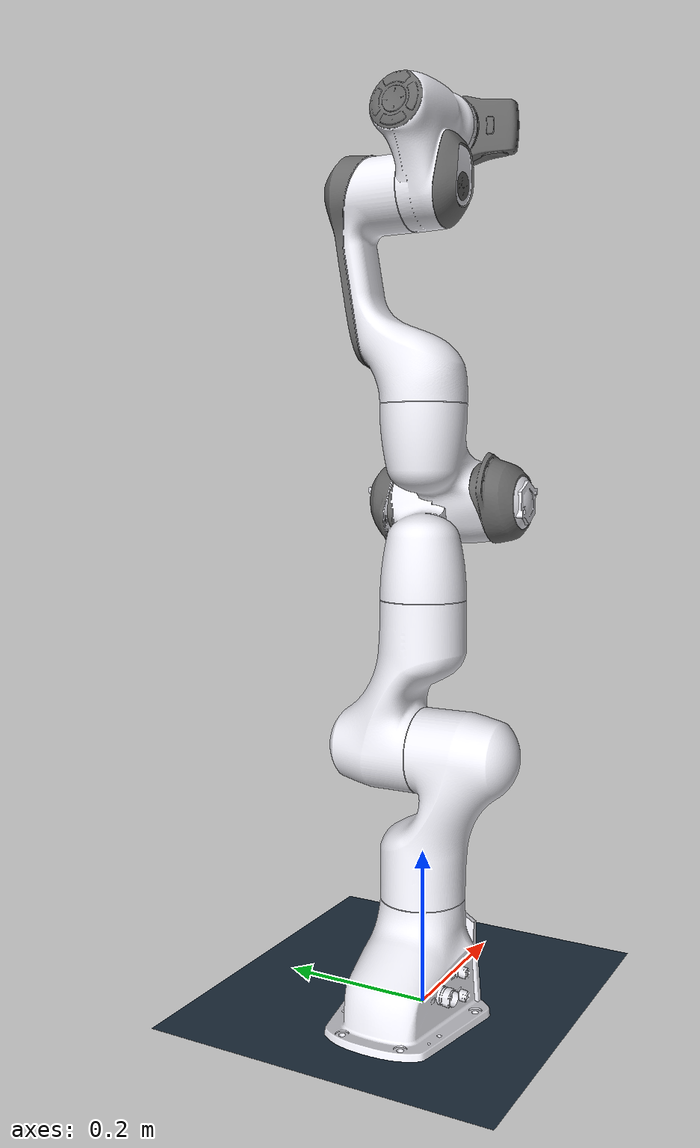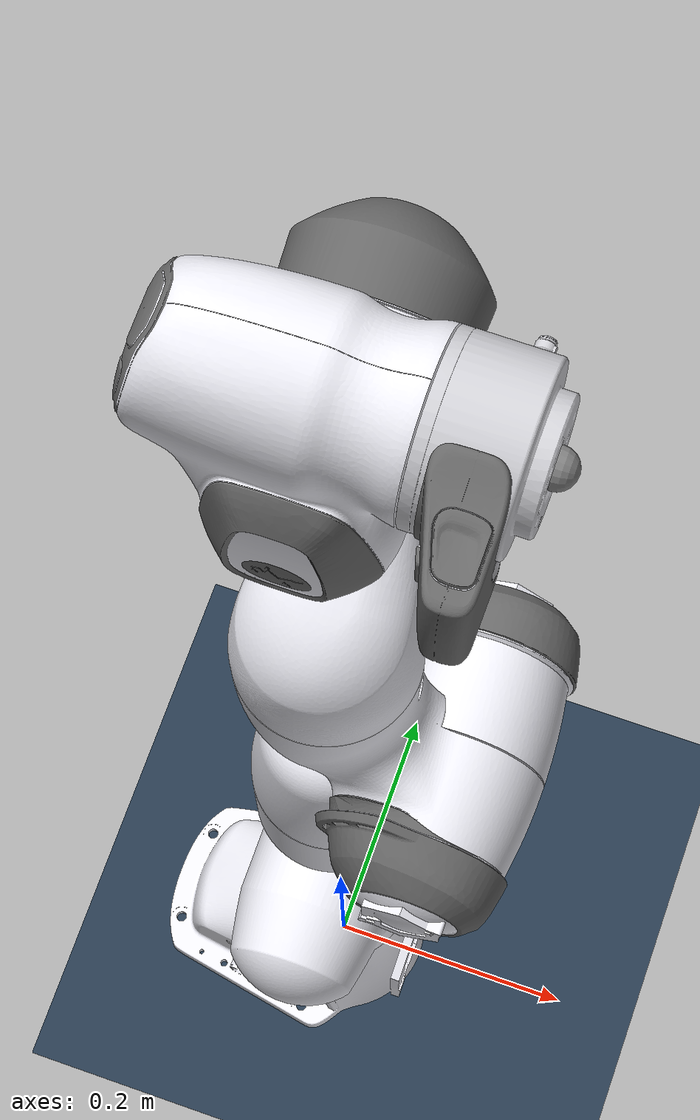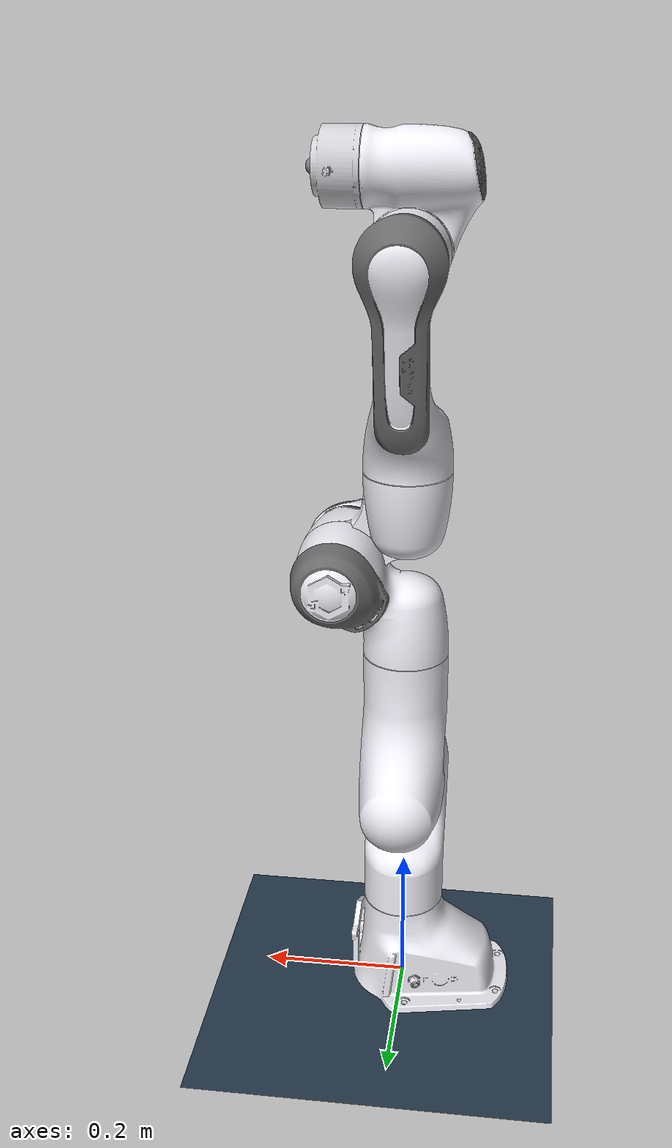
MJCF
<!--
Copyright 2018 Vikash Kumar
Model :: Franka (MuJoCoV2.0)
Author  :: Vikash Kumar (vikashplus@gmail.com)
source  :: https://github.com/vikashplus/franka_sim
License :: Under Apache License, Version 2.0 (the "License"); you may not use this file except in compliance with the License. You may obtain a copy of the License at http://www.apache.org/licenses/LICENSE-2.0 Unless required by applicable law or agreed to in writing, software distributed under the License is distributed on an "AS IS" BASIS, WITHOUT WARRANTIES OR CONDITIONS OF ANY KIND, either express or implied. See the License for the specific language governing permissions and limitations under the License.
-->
<mujoco model="franka_panda v200">

    <include file="/home/nitro/work/distl/manipulate_passive/franka_sim/assets/basic_scene.xml"/>
    <include file="/home/nitro/work/distl/manipulate_passive/franka_sim/assets/assets.xml"/>
    <compiler meshdir=""/>

    <worldbody>
        <include file="/home/nitro/work/distl/manipulate_passive/franka_sim/assets/chain0_nogripper.xml"/>
	<camera name="world" mode="targetbody" target="panda0_link0" pos="1.5 2 2" />
    </worldbody>

    <include file='/home/nitro/work/distl/manipulate_passive/franka_sim/assets/actuator0.xml'/>

</mujoco>

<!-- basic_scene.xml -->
<mujocoinclude>

    <asset>
        <texture name="texplane" type="2d" builtin="checker" rgb1=".2 .3 .4" rgb2=".1 0.15 0.2"
                width="512" height="512"/>
        <material name="MatGnd" reflectance="0.5" texture="texplane" texrepeat="1 1" texuniform="true"/>
    </asset>

    <worldbody>
        <light directional="false" diffuse=".8 .8 .8" specular="0.3 0.3 0.3" pos="1  1 3" dir="-1 -1 -3"/>
        <light directional="false" diffuse=".8 .8 .8" specular="0.3 0.3 0.3" pos="1 -1 3" dir="-1 1 -3"/>
        <light directional="false" diffuse=".8 .8 .8" specular="0.3 0.3 0.3" pos="-1 0 3" dir="1 0 -3" />
        <geom name="ground" pos="0 0 0" size="5 5 10" material="MatGnd" type="plane" contype="1" conaffinity="1"/>
    </worldbody>
</mujocoinclude>

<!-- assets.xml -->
<mujocoinclude>

    <compiler angle="radian"/>
    <option timestep="0.002"/>
    <size nuser_actuator="5"/>

    <asset>
        <mesh name="link0_col" file="/home/nitro/work/distl/manipulate_passive/franka_sim/meshes/collision/link0.stl"/>
        <mesh name="link1_col" file="/home/nitro/work/distl/manipulate_passive/franka_sim/meshes/collision/link1.stl"/>
        <mesh name="link2_col" file="/home/nitro/work/distl/manipulate_passive/franka_sim/meshes/collision/link2.stl"/>
        <mesh name="link3_col" file="/home/nitro/work/distl/manipulate_passive/franka_sim/meshes/collision/link3.stl"/>
        <mesh name="link4_col" file="/home/nitro/work/distl/manipulate_passive/franka_sim/meshes/collision/link4.stl"/>
        <mesh name="link5_col" file="/home/nitro/work/distl/manipulate_passive/franka_sim/meshes/collision/link5.stl"/>
        <mesh name="link6_col" file="/home/nitro/work/distl/manipulate_passive/franka_sim/meshes/collision/link6.stl"/>
        <mesh name="link7_col" file="/home/nitro/work/distl/manipulate_passive/franka_sim/meshes/collision/link7.stl"/>
        <mesh name="hand_col" file="/home/nitro/work/distl/manipulate_passive/franka_sim/meshes/collision/hand.stl"/>
        <mesh name="link0_viz" file="/home/nitro/work/distl/manipulate_passive/franka_sim/meshes/visual/link0.stl"/>
        <mesh name="link1_viz" file="/home/nitro/work/distl/manipulate_passive/franka_sim/meshes/visual/link1.stl"/>
        <mesh name="link2_viz" file="/home/nitro/work/distl/manipulate_passive/franka_sim/meshes/visual/link2.stl"/>
        <mesh name="link3_viz" file="/home/nitro/work/distl/manipulate_passive/franka_sim/meshes/visual/link3.stl"/>
        <mesh name="link3_dark_viz" file="/home/nitro/work/distl/manipulate_passive/franka_sim/meshes/visual/link3_dark.stl" scale="1.01 1.01 1.01"/>
        <mesh name="link4_viz" file="/home/nitro/work/distl/manipulate_passive/franka_sim/meshes/visual/link4.stl"/>
        <mesh name="link4_dark_viz" file="/home/nitro/work/distl/manipulate_passive/franka_sim/meshes/visual/link4_dark.stl" scale="1.01 1.01 1.01"/>
        <mesh name="link5_viz" file="/home/nitro/work/distl/manipulate_passive/franka_sim/meshes/visual/link5.stl"/>
        <mesh name="link5_dark_viz" file="/home/nitro/work/distl/manipulate_passive/franka_sim/meshes/visual/link5_dark.stl" scale="1.01 1.01 1.01"/>
        <mesh name="link6_viz" file="/home/nitro/work/distl/manipulate_passive/franka_sim/meshes/visual/link6.stl"/>
        <mesh name="link6_dark_viz" file="/home/nitro/work/distl/manipulate_passive/franka_sim/meshes/visual/link6_dark.stl" scale="1.01 1.01 1.01"/>
        <mesh name="link7_viz" file="/home/nitro/work/distl/manipulate_passive/franka_sim/meshes/visual/link7.stl"/>
        <mesh name="link7_dark_viz" file="/home/nitro/work/distl/manipulate_passive/franka_sim/meshes/visual/link7_dark.stl" scale="1.01 1.01 1.01"/>
        <mesh name="hand_viz" file="/home/nitro/work/distl/manipulate_passive/franka_sim/meshes/visual/hand.stl"/>
    </asset>

    <default>
        <default class="panda">
            <joint pos="0 0 0" axis="0 0 1" limited="true"/>
            <position forcelimited="true" ctrllimited="true" user="1002 40 2001 -0.005 0.005"/>
            <default class="panda_viz">
                <geom contype="0" conaffinity="0" group="0" type="mesh" rgba=".92 .92 .95 1" mass="0"/>
            </default>
            <default class="panda_grey_viz">
                <geom contype="0" conaffinity="0" group="0" type="mesh" rgba=".4 .4 .4 1" mass="0"/>
            </default>

            <default class="panda_col">
                <geom contype="1" conaffinity="1" group="3" type="mesh" rgba=".5 .6 .7 1"/>
            </default>
            <default class="panda_arm">
                <joint damping="100"/>
            </default>
             <default class="panda_forearm">
                <joint damping="10"/>
            </default>
             <default class="panda_finger">
                <joint damping="100" armature='5'/>
                <geom friction="1 0.5 0.0001" solref="0.01 1" solimp="0.8 0.9 0.001" margin="0.001" user="0" rgba="0.5 0.6 0.7 .4" contype="1" conaffinity="0" condim="6" group="3" />
                <position user="1002 40 2001 -0.0001 0.0001"/>
            </default>
        </default>

    </default>

    <sensor>
        <jointpos name="fr_arm_jp1" joint="panda0_joint1"/>
        <jointpos name="fr_arm_jp2" joint="panda0_joint2"/>
        <jointpos name="fr_arm_jp3" joint="panda0_joint3"/>
        <jointpos name="fr_arm_jp4" joint="panda0_joint4"/>
        <jointpos name="fr_arm_jp5" joint="panda0_joint5"/>
        <jointpos name="fr_arm_jp6" joint="panda0_joint6"/>
        <jointpos name="fr_arm_jp7" joint="panda0_joint7"/>
        <jointvel name="fr_arm_jv1" joint="panda0_joint1"/>
        <jointvel name="fr_arm_jv2" joint="panda0_joint2"/>
        <jointvel name="fr_arm_jv3" joint="panda0_joint3"/>
        <jointvel name="fr_arm_jv4" joint="panda0_joint4"/>
        <jointvel name="fr_arm_jv5" joint="panda0_joint5"/>
        <jointvel name="fr_arm_jv6" joint="panda0_joint6"/>
        <jointvel name="fr_arm_jv7" joint="panda0_joint7"/>
    </sensor>

</mujocoinclude>

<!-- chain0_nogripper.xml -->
<mujocoinclude>

<!-- Robot limits pulled from https://frankaemika.github.io/docs/control_parameters.html#constants -->

    <body name="panda0_link0" childclass="panda" >
        <geom class="panda_viz" mesh="link0_viz"/>
        <geom class="panda_col" mesh="link0_col" mass="2.91242"/>
        <body name="panda0_link1" pos="0 0 0.333">
            <joint name="panda0_joint1" range="-2.8973 2.8973" class="panda_arm"/>
            <geom class="panda_viz" mesh="link1_viz"/>
            <geom class="panda_col" mesh="link1_col" mass="2.7063"/>
            <body name="panda0_link2" pos="0 0 0" quat="0.707107 -0.707107 0 0">
                <joint name="panda0_joint2" range="-1.7628 1.7628" class="panda_arm"/>
                <geom class="panda_viz" mesh="link2_viz"/>
                <geom class="panda_col" mesh="link2_col" mass="2.73046"/>
                <body name="panda0_link3" pos="0 -0.316 0" quat="0.707107 0.707107 0 0">
                    <joint name="panda0_joint3" range="-2.8973 2.8973" class="panda_arm"/>
                    <geom class="panda_viz" mesh="link3_viz"/>
                    <geom class="panda_grey_viz" mesh="link3_dark_viz" pos="0 .001 0"/>
                    <geom class="panda_col" mesh="link3_col" mass="2.04104"/>
                    <body name="panda0_link4" pos="0.0825 0 0" quat="0.707107 0.707107 0 0">
                        <joint name="panda0_joint4" range="-3.0718 -0.4" class="panda_arm"/>
                        <geom class="panda_viz" mesh="link4_viz"/>
                        <geom class="panda_grey_viz" mesh="link4_dark_viz"/>
                        <geom class="panda_col" mesh="link4_col" mass="2.08129"/>
                        <body name="panda0_link5" pos="-0.0825 0.384 0" quat="0.707107 -0.707107 0 0">
                            <joint name="panda0_joint5" range="-2.8973 2.8973" class="panda_forearm"/>
                            <geom class="panda_viz" mesh="link5_viz"/>
                            <geom class="panda_grey_viz" mesh="link5_dark_viz"/>
                            <geom class="panda_col" mesh="link5_col" mass="3.00049"/>
                            <body name="panda0_link6" pos="0 0 0" euler='1.57 0 1.57'>
                                <joint name="panda0_joint6" range="-1.6573 2.1127" class="panda_forearm"/>
                                <geom class="panda_viz" mesh="link6_viz"/>
                                <geom class="panda_grey_viz" mesh="link6_dark_viz"/>
                                <geom class="panda_col" mesh="link6_col" mass="1.3235"/>
                                <body name="panda0_link7" pos="0.088 0 0" euler='1.57 0 0.7854'>
                                    <joint name="panda0_joint7" range="-2.8973 2.8973" class="panda_forearm"/>
                                    <geom class="panda_viz" mesh="link7_viz" rgba=".8 .8 .82 1"/>
                                    <geom class="panda_grey_viz" mesh="link7_dark_viz" pos="0 0 -.0008"/>
                                    <geom class="panda_col" mesh="link7_col" mass="0.2"/>

                                    <!-- End Effector attaches here-->
                            	    <site name='end_effector' pos='0 0 0.107' size='0.01' euler='0 0 0'/>

                                </body>
                            </body>
                        </body>
                    </body>
                </body>
            </body>
        </body>
    </body>
</mujocoinclude>

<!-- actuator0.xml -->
<mujocoinclude>

    <actuator>
        <position name="panda0_joint1" joint="panda0_joint1" class="panda" kp="870" forcerange="-87 87" ctrlrange="-2.9671 2.9671"/> <!-- velocity="2.1750" -->
        <position name="panda0_joint2" joint="panda0_joint2" class="panda" kp="870" forcerange="-87 87" ctrlrange="-1.8326 1.8326"/> <!-- velocity="2.1750" -->
        <position name="panda0_joint3" joint="panda0_joint3" class="panda" kp="870" forcerange="-87 87" ctrlrange="-2.9671 2.9671"/> <!-- velocity="2.1750" -->
        <position name="panda0_joint4" joint="panda0_joint4" class="panda" kp="870" forcerange="-87 87" ctrlrange="-3.1416 0.0"/> <!-- velocity="2.1750" -->
        <position name="panda0_joint5" joint="panda0_joint5" class="panda" kp="120" forcerange="-12 12" ctrlrange="-2.9671 2.9671"/> <!-- velocity="2.6100" -->
        <position name="panda0_joint6" joint="panda0_joint6" class="panda" kp="120" forcerange="-12 12" ctrlrange="-1.66 2.1817"/> <!-- velocity="2.6100" -->
        <position name="panda0_joint7" joint="panda0_joint7" class="panda" kp="120" forcerange="-12 12" ctrlrange="-2.9671 2.9671"/> <!-- velocity="2.9671" -->
    </actuator>
</mujocoinclude>
